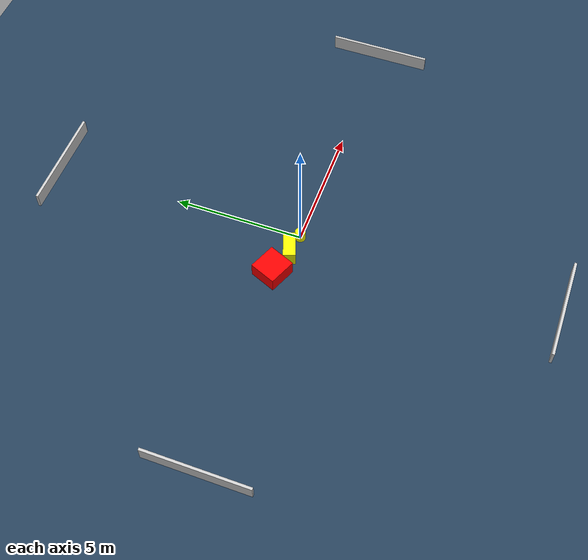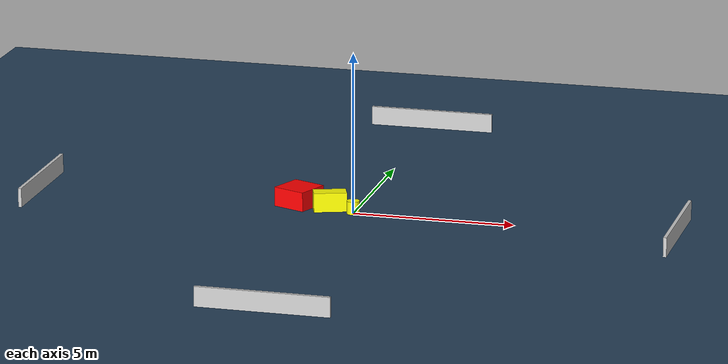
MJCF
<?xml version="1.0" ?>
<mujoco model="generated_environment">
  <option timestep="0.01" integrator="RK4" cone="elliptic"/>
  <default>
    <geom density="1"/>
  </default>
  <asset>
    <texture builtin="gradient" height="3072" name="skybox" rgb1="0.3 0.5 0.7" rgb2="0 0 0" type="skybox" width="512"/>
    <texture builtin="checker" height="300" name="groundplane" rgb1="0.2 0.3 0.4" rgb2="0.1 0.2 0.3" type="2d" width="300"/>
    <material name="groundplane" reflectance="0.2" texrepeat="5 5" texture="groundplane"/>
  </asset>
  <worldbody>
    <light dir="0 0 -1" directional="true" pos="0 0 1.5"/>
    <geom condim="3" friction="0.5 0.005 0.001" material="groundplane" name="floor" pos="0 0 0" size="0 0 0.05" type="plane"/>
    <body name="walls">
      <geom name="wall_1" condim="4" pos="-10.0 0.0 0.3" rgba="0.800000011920929 0.800000011920929 0.800000011920929 1.0" size="0.05 2.0 0.3" type="box"/>
      <geom name="wall_2" condim="4" pos="10.0 0.0 0.3" rgba="0.800000011920929 0.800000011920929 0.800000011920929 1.0" size="0.05 2.0 0.3" type="box"/>
      <geom name="wall_3" condim="4" pos="0.0 -10.0 0.3" rgba="0.800000011920929 0.800000011920929 0.800000011920929 1.0" size="2.0 0.05 0.3" type="box"/>
      <geom name="wall_4" condim="4" pos="0.0 10.0 0.3" rgba="0.800000011920929 0.800000011920929 0.800000011920929 1.0" size="2.0 0.05 0.3" type="box"/>
    </body>
    <body name="robot">
      <joint name="joint_x" type="slide" pos="0 0 0" axis="1 0 0"/>
      <joint name="joint_y" type="slide" pos="0 0 0" axis="0 1 0"/>
      <geom name="robot" type="cylinder" pos="0.0 0.0 0.2" size="0.2 0.2 0.0" mass="5.0" friction="1.0 0.005 0.0001" condim="4" rgba="1.0 1.0 0.0 1.0"/>
    </body>
    <body name="obstacle_1_movable">
      <geom name="obstacle_1_movable" condim="4" pos="-0.7790078610934791 0.15555468223698965 0.3" euler="0 0 199.73640376209607" friction="0.0 0.005 0.001" rgba="1.0 1.0 0.0 1.0" size="0.5045638420720374 0.2335074986753308 0.3" type="box" mass="0.1"/>
      <joint type="free"/>
    </body>
    <body name="obstacle_2_static">
      <geom name="obstacle_2_static" condim="4" pos="-1.8269022993368624 0.4365385633298203 0.3" euler="0 0 247.42851722955484" friction="0.0 0.005 0.001" rgba="1.0 0.0 0.0 1.0" size="0.5272534424754405 0.5398967263324359 0.3" type="box"/>
    </body>
  </worldbody>
  <actuator>
    <motor name="actuator_x" joint="joint_x" gear="1" ctrlrange="-1 1"/>
    <motor name="actuator_y" joint="joint_y" gear="1" ctrlrange="-1 1"/>
  </actuator>
</mujoco>
